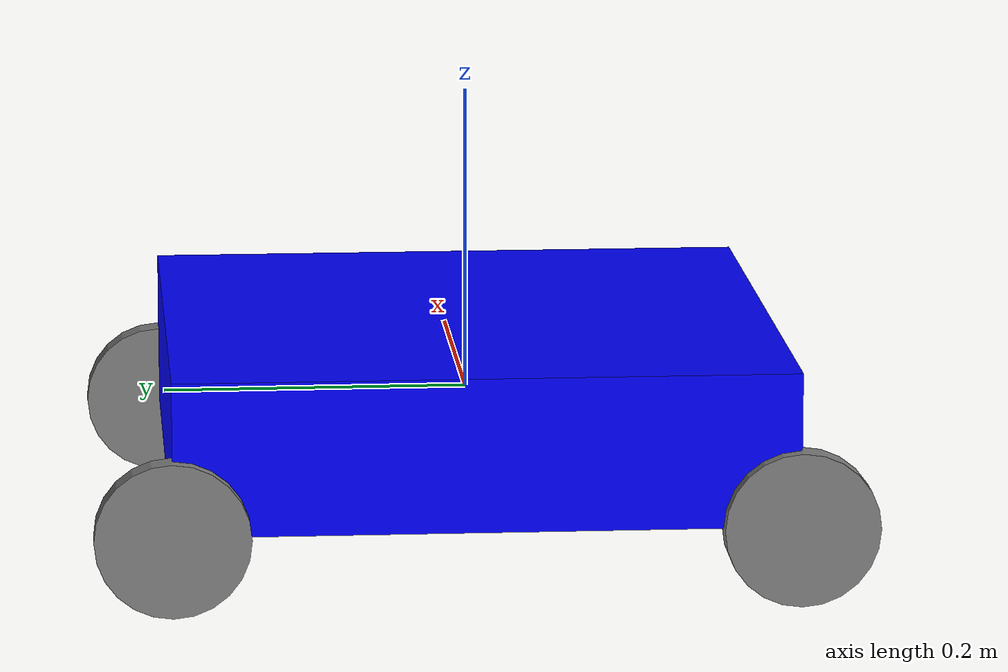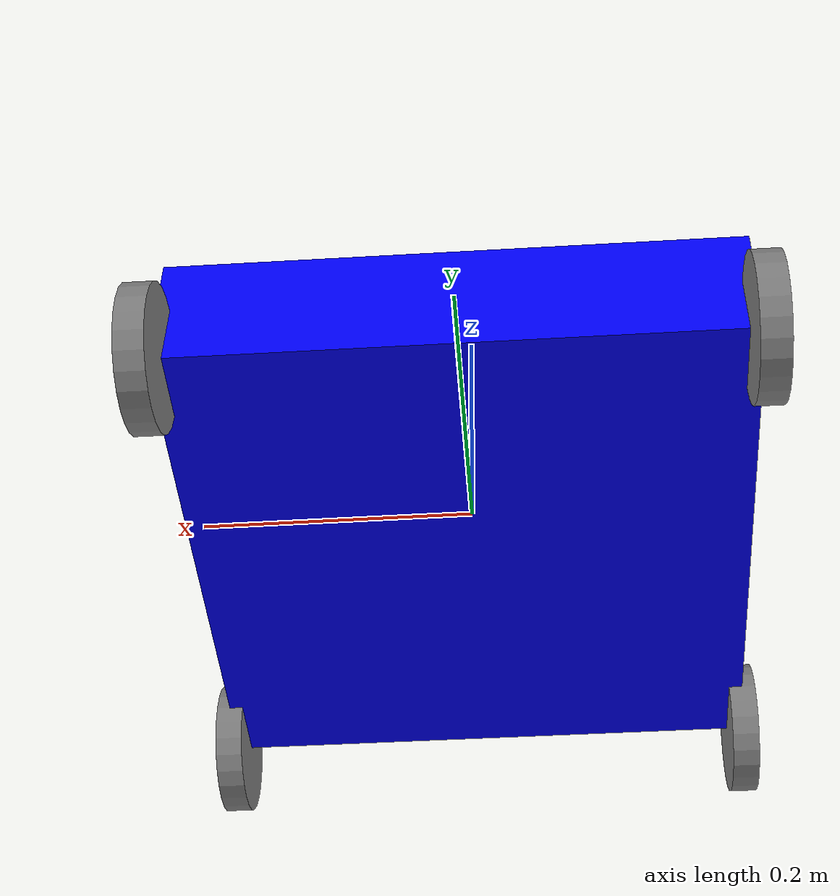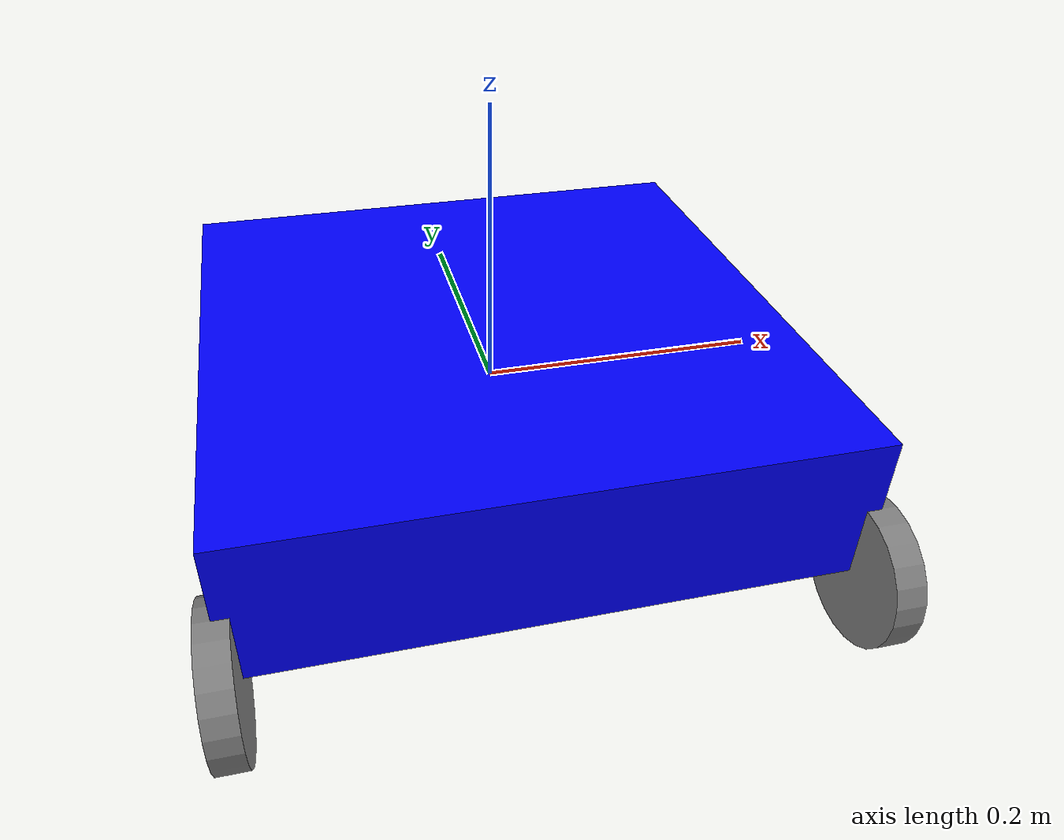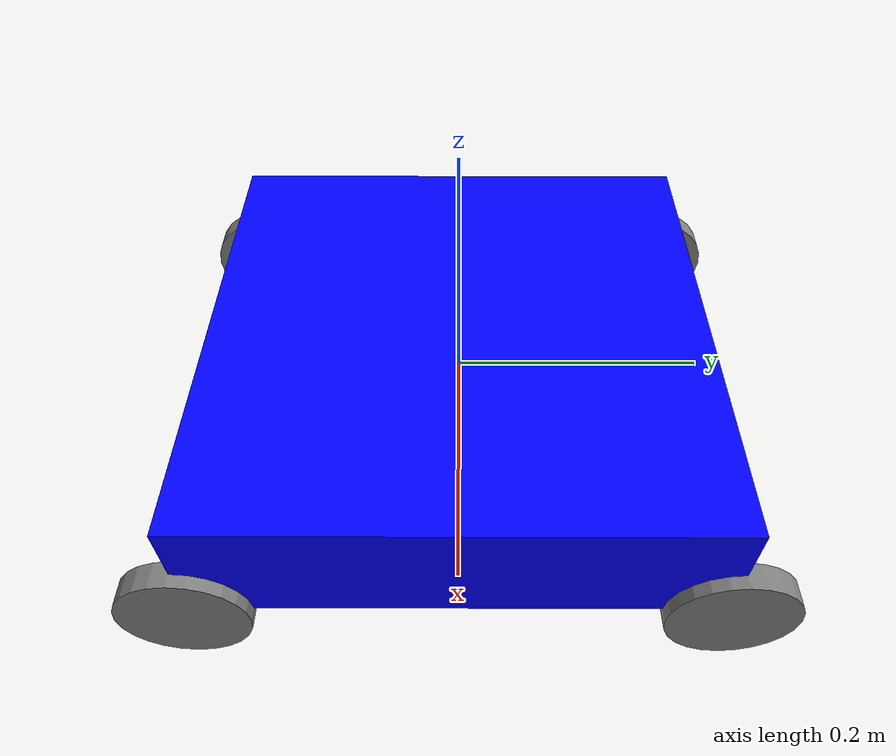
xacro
<?xml version="1.0"?>
<robot name="transport_bot" xmlns:xacro="http://ros.org/wiki/xacro">

  <xacro:property name="wheel_radius" value="0.05"/>
  <xacro:property name="wheel_width" value="0.02"/>
  <xacro:property name="base_length" value="0.4"/>
  <xacro:property name="base_width" value="0.4"/>
  <xacro:property name="base_height" value="0.1"/>

  <!-- Base Link -->
  <link name="base_link">
    <visual>
      <geometry>
        <box size="${base_length} ${base_width} ${base_height}"/>
      </geometry>
      <material name="blue"><color rgba="0 0 1 1"/></material>
    </visual>
    <collision>
      <geometry>
        <box size="${base_length} ${base_width} ${base_height}"/>
      </geometry>
    </collision>
    <inertial>
      <mass value="5.0"/>
      <origin xyz="0 0 0" rpy="0 0 0"/>
      <inertia ixx="0.1" ixy="0" ixz="0" iyy="0.1" iyz="0" izz="0.1"/>
    </inertial>
  </link>

  <!-- 4 Omnidirectional Wheels -->
  <xacro:macro name="wheel" params="name x y">
    <link name="${name}">
      <visual>
        <geometry>
          <cylinder radius="${wheel_radius}" length="${wheel_width}"/>
        </geometry>
        <material name="gray"><color rgba="0.5 0.5 0.5 1"/></material>
      </visual>
      <collision>
        <geometry>
          <cylinder radius="${wheel_radius}" length="${wheel_width}"/>
        </geometry>
      </collision>
      <inertial>
        <mass value="0.2"/>
        <origin xyz="0 0 0" rpy="0 0 0"/>
        <inertia ixx="0.0001" ixy="0.0" ixz="0.0" iyy="0.0001" iyz="0.0" izz="0.0001"/>
      </inertial>
    </link>

    <joint name="${name}_joint" type="continuous">
      <parent link="base_link"/>
      <child link="${name}"/>
      <origin xyz="${x} ${y} -${base_height/2}" rpy="0 1.5708 0"/>
      <axis xyz="0 0 1"/>  <!-- Wheel rotation axis (Z axis in local frame) -->
    </joint>
  </xacro:macro>

  <!-- Front Left -->
  <xacro:wheel name="wheel_fl" x="${base_length/2}" y="${base_width/2}"/>
  <!-- Front Right -->
  <xacro:wheel name="wheel_fr" x="${base_length/2}" y="-${base_width/2}"/>
  <!-- Rear Left -->
  <xacro:wheel name="wheel_rl" x="-${base_length/2}" y="${base_width/2}"/>
  <!-- Rear Right -->
  <xacro:wheel name="wheel_rr" x="-${base_length/2}" y="-${base_width/2}"/>

<gazebo>
  <plugin name="diff_drive" filename="libgazebo_ros_diff_drive.so">
    <ros>
      <namespace>/</namespace>
    </ros>
    <update_rate>50</update_rate>
    <left_joint>wheel_rl_joint</left_joint>
    <right_joint>wheel_rr_joint</right_joint>
    <wheel_separation>0.4</wheel_separation> <!-- Adjust as per your robot -->
    <wheel_radius>0.05</wheel_radius>
    <cmd_vel_topic>/cmd_vel</cmd_vel_topic>
    <odometry_topic>/odom</odometry_topic>
    <odometry_frame>odom</odometry_frame>
    <robot_base_frame>base_link</robot_base_frame>
    <publish_tf>true</publish_tf>
  </plugin>
</gazebo>

</robot>
